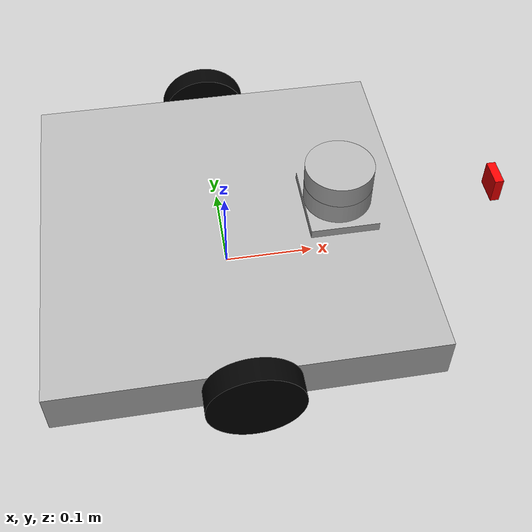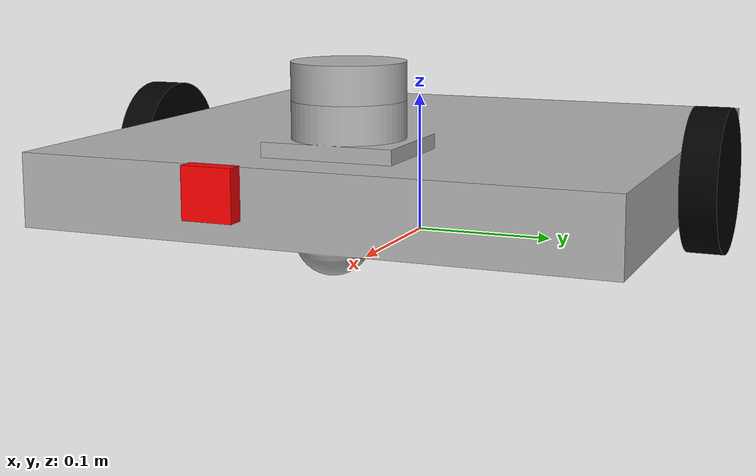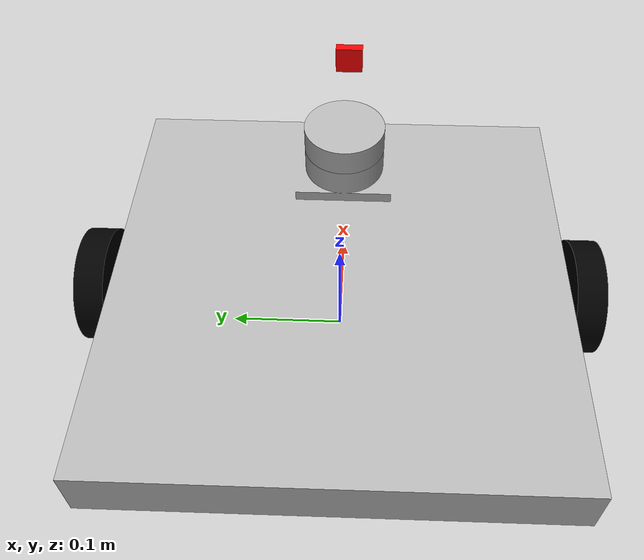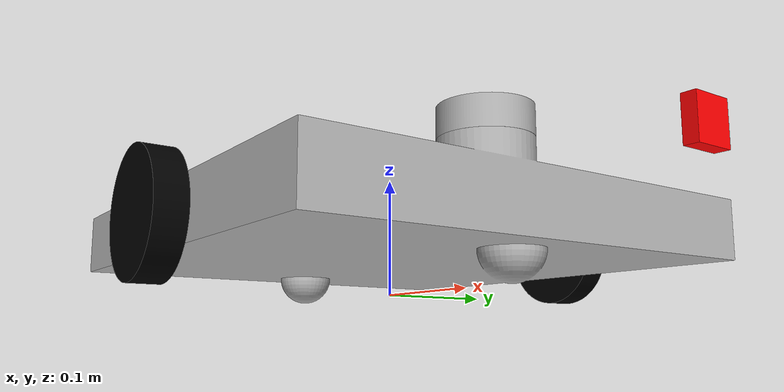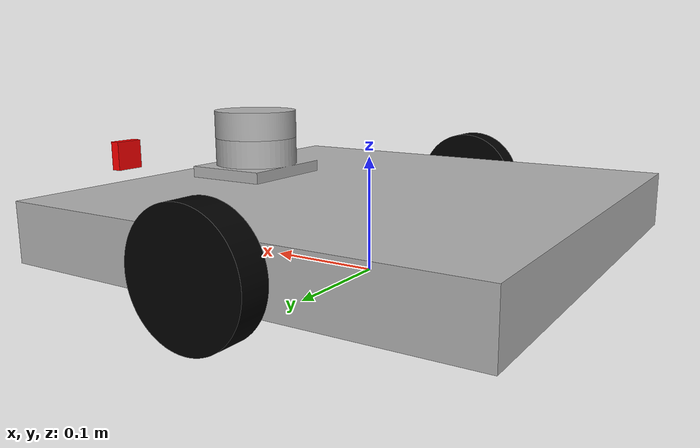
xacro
<?xml version="1.0" ?>
<robot name="bot" xmlns:xacro="http://www.ros.org/wiki/xacro">

<xacro:include filename="$(find bot_description)/urdf/materials.xacro" />
<xacro:include filename="$(find bot_description)/urdf/bot.trans" />
<xacro:include filename="$(find bot_description)/urdf/bot.gazebo" />
<xacro:include filename="$(find bot_description)/urdf/depth_camera.xacro" />

<link name="base_footprint">
</link>

<joint name="footprint2baselink" type="fixed">
  <parent link="base_footprint"/>
  <child link="base_link"/>
  <origin xyz="0 0 0" rpy="0 0 0"/>
  <axis xyz="0 0 0"/>
</joint>

<link name="base_link">
  <inertial>
    <origin xyz="0.002698320672702968 3.530562988808361e-17 0.05060913918526123" rpy="0 0 0"/>
    <mass value="8.73800025149821"/>
    <inertia ixx="0.115348" iyy="0.119778" izz="0.230759" ixy="0.0" iyz="0.0" ixz="-0.000949"/>
  </inertial>
  <visual>
    <origin xyz="0 0 0" rpy="0 0 0"/>
    <geometry>
      <mesh filename="file://$(find bot_description)/meshes/base_link.stl" scale="0.001 0.001 0.001"/>
    </geometry>
    <material name="silver"/>
  </visual>
  <collision>
    <origin xyz="0 0 0" rpy="0 0 0"/>
    <geometry>
      <mesh filename="file://$(find bot_description)/meshes/base_link.stl" scale="0.001 0.001 0.001"/>
    </geometry>
  </collision>
</link>

<link name="right_wheel_1">
  <inertial>
    <origin xyz="-5.790023100122029e-18 -0.012499999999999983 0.0" rpy="0 0 0"/>
    <mass value="0.1826050729899067"/>
    <inertia ixx="0.000124" iyy="0.000228" izz="0.000124" ixy="-0.0" iyz="0.0" ixz="0.0"/>
  </inertial>
  <visual>
    <origin xyz="-0.0 0.2 -0.05" rpy="0 0 0"/>
    <geometry>
      <mesh filename="file://$(find bot_description)/meshes/right_wheel_1.stl" scale="0.001 0.001 0.001"/>
    </geometry>
    <material name="black"/>
  </visual>
  <collision>
    <origin xyz="-0.0 0.2 -0.05" rpy="0 0 0"/>
    <geometry>
      <mesh filename="file://$(find bot_description)/meshes/right_wheel_1.stl" scale="0.001 0.001 0.001"/>
    </geometry>
  </collision>
</link>

<link name="lidar_1">
  <inertial>
    <origin xyz="2.7755575615628914e-17 1.544006160032542e-17 0.012500000000000011" rpy="0 0 0"/>
    <mass value="0.8670059413129639"/>
    <inertia ixx="0.00035" iyy="0.00035" izz="0.00061" ixy="-0.0" iyz="0.0" ixz="0.0"/>
  </inertial>
  <visual>
    <origin xyz="-0.125 -0.0 -0.11" rpy="0 0 0"/>
    <geometry>
      <mesh filename="file://$(find bot_description)/meshes/lidar_1.stl" scale="0.001 0.001 0.001"/>
    </geometry>
    <material name="silver"/>
  </visual>
  <collision>
    <origin xyz="-0.125 -0.0 -0.11" rpy="0 0 0"/>
    <geometry>
      <mesh filename="file://$(find bot_description)/meshes/lidar_1.stl" scale="0.001 0.001 0.001"/>
    </geometry>
  </collision>
</link>

<link name="left_wheel_1">
  <inertial>
    <origin xyz="-5.790023100122029e-18 0.012499999999999983 0.0" rpy="0 0 0"/>
    <mass value="0.1826050729899067"/>
    <inertia ixx="0.000124" iyy="0.000228" izz="0.000124" ixy="-0.0" iyz="0.0" ixz="0.0"/>
  </inertial>
  <visual>
    <origin xyz="-0.0 -0.2 -0.05" rpy="0 0 0"/>
    <geometry>
      <mesh filename="file://$(find bot_description)/meshes/left_wheel_1.stl" scale="0.001 0.001 0.001"/>
    </geometry>
    <material name="black"/>
  </visual>
  <collision>
    <origin xyz="-0.0 -0.2 -0.05" rpy="0 0 0"/>
    <geometry>
      <mesh filename="file://$(find bot_description)/meshes/left_wheel_1.stl" scale="0.001 0.001 0.001"/>
    </geometry>
  </collision>
</link>

<joint name="Revolute1" type="continuous">
  <origin xyz="0.0 -0.2 0.05" rpy="0 0 0"/>
  <parent link="base_link"/>
  <child link="right_wheel_1"/>
  <axis xyz="0.0 1.0 0.0"/>
</joint>

<joint name="Rigid 2" type="fixed">
  <origin xyz="0.125 0.0 0.11" rpy="0 0 0"/>
  <parent link="base_link"/>
  <child link="lidar_1"/>
</joint>

<joint name="Revolute3" type="continuous">
  <origin xyz="0.0 0.2 0.05" rpy="0 0 0"/>
  <parent link="base_link"/>
  <child link="left_wheel_1"/>
  <axis xyz="0.0 1.0 0.0"/>
</joint>

</robot>

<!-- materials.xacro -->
<robot name="bot" xmlns:xacro="http://www.ros.org/wiki/xacro">

  <material name="silver">
    <color rgba="0.700 0.700 0.700 1.000"/>
  </material>
  <material name="black">
    <color rgba="0 0 0 1"/>
  </material>
  <material name="green">
    <color rgba="0 1 0 1"/>
  </material>
  <material name="red">
    <color rgba="1 0 0 1"/>
  </material>

</robot>

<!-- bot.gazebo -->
<robot name="bot" xmlns:xacro="http://www.ros.org/wiki/xacro" >

<xacro:property name="body_color" value="Gazebo/Silver" />
<xacro:property name="wheel_color" value="Gazebo/Black" />
<xacro:property name="lidar_color" value="Gazebo/Green" />

<gazebo>
  <plugin name="control" filename="libgazebo_ros_control.so"/>
</gazebo>
<gazebo reference="base_link">
  <material>${body_color}</material>
  <mu1>0.2</mu1>
  <mu2>0.2</mu2>
  <self_collide>true</self_collide>
  <gravity>true</gravity>
</gazebo>

<gazebo reference="right_wheel_1">
  <material>${wheel_color}</material>
  <mu1>1000</mu1>
  <mu2>1000</mu2>
  <self_collide>true</self_collide>
</gazebo>

<gazebo reference="lidar_1">
  <material>${lidar_color}</material>
  <mu1>0.2</mu1>
  <mu2>0.2</mu2>
  <self_collide>true</self_collide>
</gazebo>

<gazebo reference="left_wheel_1">
  <material>${wheel_color}</material>
  <mu1>1000</mu1>
  <mu2>1000</mu2>
  <self_collide>true</self_collide>
</gazebo>

<gazebo>
    <plugin name="diff_drive_control" filename="libgazebo_ros_diff_drive.so">

      <update_rate>50</update_rate>

      <left_joint>Revolute3</left_joint>
      <right_joint>Revolute1</right_joint>

      <wheel_separation>0.4</wheel_separation>
      <wheel_diameter>0.1</wheel_diameter>

      <command_topic>cmd_vel</command_topic>

      <publish_odom>true</publish_odom>
      <publish_odom_tf>true</publish_odom_tf>
      <publish_wheel_tf>true</publish_wheel_tf>

      <odometry_topic>odom</odometry_topic>
      <odometry_frame>odom</odometry_frame>
      <robot_base_frame>base_footprint</robot_base_frame>

    </plugin>
  </gazebo>

  <gazebo reference="lidar_1">
    <sensor type="ray" name="head_hokuyo_sensor">
      <pose>0 0 0 0 0 0</pose>
      <visualize>false</visualize>
      <update_rate>30</update_rate>
      <ray>
        <scan>
          <horizontal>
            <samples>300</samples>
            <resolution>1</resolution>
            <min_angle>-3.14</min_angle>
            <max_angle>3.14</max_angle>
          </horizontal>
        </scan>
        <range>
          <min>0.3</min>
          <max>30.0</max>
          <resolution>0.01</resolution>
        </range>
        <noise>
          <type>gaussian</type>
          <mean>0.0</mean>
          <stddev>0.01</stddev>
        </noise>
      </ray>
      <plugin name="my_ray_sensor_plugin" filename="libgazebo_ros_ray_sensor.so">
        <ros>
          <remapping>~/out:=scan</remapping>
        </ros>
        <output_type>sensor_msgs/LaserScan</output_type>
        <min_intensity>100.0</min_intensity>
        <frame_name>lidar_1</frame_name>
      </plugin>
    </sensor>
  </gazebo>
</robot>

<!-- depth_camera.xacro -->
<robot xmlns:xacro="http://www.ros.org/wiki/xacro" >

    <joint name="camera_joint" type="fixed">
        <parent link="base_link"/>
        <child link="camera_link"/>
        <origin xyz="0.305 0 0.08" rpy="0 0 0"/>
    </joint>

    <link name="camera_link">
        <visual>
            <geometry>
                <box size="0.010 0.03 0.03"/>
            </geometry>
            <material name="red"/>
        </visual>
    </link>

    <joint name="camera_optical_joint" type="fixed">
        <parent link="camera_link"/>
        <child link="camera_link_optical"/>
        <origin xyz="0 0 0" rpy="${-pi/2} 0 ${-pi/2}"/>
    </joint>

    <link name="camera_link_optical"></link>

    <gazebo reference="camera_link">
        <material>Gazebo/Red</material>

        <sensor name="camera" type="depth">
            <pose> 0 0 0 0 0 0 </pose>
            <visualize>true</visualize>
            <update_rate>10</update_rate>
            <camera>
                <horizontal_fov>1.089</horizontal_fov>
                <image>
                    <format>B8G8R8</format>
                    <width>640</width>
                    <height>480</height>
                </image>
                <clip>
                    <near>0.05</near>
                    <far>8.0</far>
                </clip>
            </camera>
            <plugin name="camera_controller" filename="libgazebo_ros_camera.so">
                <frame_name>camera_link_optical</frame_name>
                <min_depth>0.1</min_depth>
                <max_depth>100.0</max_depth>
            </plugin>
        </sensor>
    </gazebo>

</robot>
